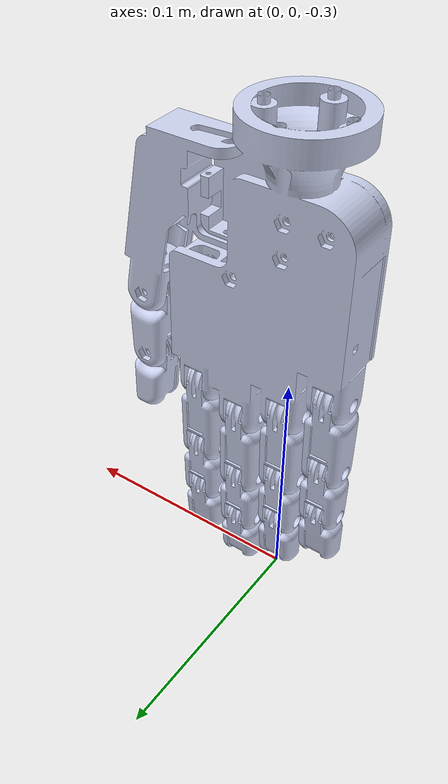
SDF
<?xml version="1.0"?>
<sdf version="1.7">
  <model name="Dextra_right">

    <link name="RightWrist_link">
      <pose>0 0 0 0 -0 0</pose>
      <inertial>
        <mass>0.3</mass>
      </inertial>
      <visual name="RightWrist_visual">
        <geometry>
          <mesh>
            <scale>0.001 0.001 0.001</scale>
            <uri>model://dextra_right/meshes/visual/RightStaticLinks.dae</uri>
          </mesh>
        </geometry>
        <material>
          <ambient>0.792157 0.819608 0.933333 1</ambient>
          <diffuse>0.792157 0.819608 0.933333 1</diffuse>
          <specular>0.633726 0.655686 0.746667 1</specular>
        </material>
      </visual>
      <collision name="RightWrist_collision">
        <geometry>
          <mesh>
            <scale>0.001 0.001 0.001</scale>
            <uri>model://dextra_right/meshes/collision/RightStaticLinks.stl</uri>
          </mesh>
        </geometry>
        <max_contacts>2</max_contacts>
        <surface>
          <contact>
            <ode>
              <kp>1000000</kp>
              <kd>100</kd>
              <max_vel>0.001</max_vel>
              <min_depth>0.001</min_depth>
            </ode>
          </contact>
          <friction>
            <ode>
              <mu>1</mu>
              <mu2>1</mu2>
              <slip1>0</slip1>
              <slip2>0</slip2>
            </ode>
          </friction>
        </surface>
      </collision>
    </link>

    <link name="RightThumbAbductor_link">
      <pose relative_to="RightWrist_link">0.026 -0.0126 -0.112 -1.5708 0 0</pose>
      <inertial>
        <mass>0.1</mass>
      </inertial>
      <visual name="RightThumbAbductor_visual">
        <geometry>
          <mesh>
            <scale>0.001 0.001 0.001</scale>
            <uri>model://dextra_common/meshes/visual/Abductor.dae</uri>
          </mesh>
        </geometry>
        <material>
          <ambient>0.792157 0.819608 0.933333 1</ambient>
          <diffuse>0.792157 0.819608 0.933333 1</diffuse>
          <specular>0.633726 0.655686 0.746667 1</specular>
        </material>
      </visual>
      <collision name="RightThumbAbductor_collision">
        <geometry>
          <mesh>
            <scale>0.001 0.001 0.001</scale>
            <uri>model://dextra_common/meshes/collision/Abductor.stl</uri>
          </mesh>
        </geometry>
        <max_contacts>2</max_contacts>
        <surface>
          <contact>
            <ode>
              <kp>1000000</kp>
              <kd>100</kd>
              <max_vel>0.001</max_vel>
              <min_depth>0.001</min_depth>
            </ode>
          </contact>
          <friction>
            <ode>
              <mu>1</mu>
              <mu2>1</mu2>
              <slip1>0</slip1>
              <slip2>0</slip2>
            </ode>
          </friction>
        </surface>
      </collision>
    </link>

    <joint name="RightThumbAbductor" type="revolute">
      <parent>RightWrist_link</parent>
      <child>RightThumbAbductor_link</child>
      <axis>
        <xyz>0 -1 0</xyz>
        <limit>
          <lower>0.0</lower>
          <upper>1.5708</upper>
        </limit>
        <dynamics>
          <damping>0.001</damping>
          <friction>0.7</friction>
        </dynamics>
      </axis>
    </joint>

    <link name="RightThumbProximal_link">
      <pose relative_to="RightThumbAbductor_link">0.0406 0.0685 0.01775 1.5708 0 1.5708</pose>
      <inertial>
        <mass>0.1</mass>
      </inertial>
      <visual name="RightThumbProximal_visual">
        <geometry>
          <mesh>
            <scale>0.001 0.001 0.001</scale>
            <uri>model://dextra_common/meshes/visual/ProximalThumb.dae</uri>
          </mesh>
        </geometry>
        <material>
          <ambient>0.792157 0.819608 0.933333 1</ambient>
          <diffuse>0.792157 0.819608 0.933333 1</diffuse>
          <specular>0.633726 0.655686 0.746667 1</specular>
        </material>
      </visual>
      <collision name="RightThumbProximal_collision">
        <geometry>
          <mesh>
            <scale>0.001 0.001 0.001</scale>
            <uri>model://dextra_common/meshes/collision/ProximalThumb.stl</uri>
          </mesh>
        </geometry>
        <max_contacts>2</max_contacts>
        <surface>
          <contact>
            <ode>
              <kp>1000000</kp>
              <kd>100</kd>
              <max_vel>0.001</max_vel>
              <min_depth>0.001</min_depth>
            </ode>
          </contact>
          <friction>
            <ode>
              <mu>1</mu>
              <mu2>1</mu2>
              <slip1>0</slip1>
              <slip2>0</slip2>
            </ode>
          </friction>
        </surface>
      </collision>
    </link>

    <joint name="RightThumbProximal" type="revolute">
      <parent>RightThumbAbductor_link</parent>
      <child>RightThumbProximal_link</child>
      <axis>
        <xyz>0 -1 0</xyz>
        <limit>
          <lower>-1.5708</lower>
          <upper>1.5708</upper>
        </limit>
        <dynamics>
          <damping>0.001</damping>
          <friction>0.7</friction>
        </dynamics>
      </axis>
    </joint>

    <link name="RightThumbDistal_link">
      <pose relative_to="RightThumbProximal_link">0.03 0 0 0 0 0</pose>
      <inertial>
        <mass>0.1</mass>
      </inertial>
      <visual name="RightThumbDistal_visual">
        <geometry>
          <mesh>
            <scale>0.001 0.001 0.001</scale>
            <uri>model://dextra_common/meshes/visual/DistalThumb.dae</uri>
          </mesh>
        </geometry>
        <material>
          <ambient>0.792157 0.819608 0.933333 1</ambient>
          <diffuse>0.792157 0.819608 0.933333 1</diffuse>
          <specular>0.633726 0.655686 0.746667 1</specular>
        </material>
      </visual>
      <collision name="RightThumbDistal_collision">
        <geometry>
          <mesh>
            <scale>0.001 0.001 0.001</scale>
            <uri>model://dextra_common/meshes/collision/DistalThumb.stl</uri>
          </mesh>
        </geometry>
        <max_contacts>2</max_contacts>
        <surface>
          <contact>
            <ode>
              <kp>1000000</kp>
              <kd>100</kd>
              <max_vel>0.001</max_vel>
              <min_depth>0.001</min_depth>
            </ode>
          </contact>
          <friction>
            <ode>
              <mu>1</mu>
              <mu2>1</mu2>
              <slip1>0</slip1>
              <slip2>0</slip2>
            </ode>
          </friction>
        </surface>
      </collision>
    </link>

    <joint name="RightThumbDistal" type="revolute">
      <parent>RightThumbProximal_link</parent>
      <child>RightThumbDistal_link</child>
      <axis>
        <xyz>0 -1 0</xyz>
        <limit>
          <lower>-1.48353</lower>
          <upper>-0.122173</upper>
        </limit>
        <dynamics>
          <damping>0.001</damping>
          <friction>0.7</friction>
        </dynamics>
      </axis>
    </joint>

    <link name="RightPinkyProximal_link">
      <pose relative_to="RightWrist_link">-0.01062 -0.001 -0.196 1.5708 1.5708 0</pose>
      <inertial>
        <mass>0.1</mass>
      </inertial>
      <visual name="RightPinkyProximal_visual">
        <geometry>
          <mesh>
            <scale>0.001 0.001 0.001</scale>
            <uri>model://dextra_common/meshes/visual/Proximal.dae</uri>
          </mesh>
        </geometry>
        <material>
          <ambient>0.792157 0.819608 0.933333 1</ambient>
          <diffuse>0.792157 0.819608 0.933333 1</diffuse>
          <specular>0.633726 0.655686 0.746667 1</specular>
        </material>
      </visual>
      <collision name="RightPinkyProximal_collision">
        <geometry>
          <mesh>
            <scale>0.001 0.001 0.001</scale>
            <uri>model://dextra_common/meshes/collision/Proximal.stl</uri>
          </mesh>
        </geometry>
        <max_contacts>2</max_contacts>
        <surface>
          <contact>
            <ode>
              <kp>1000000</kp>
              <kd>100</kd>
              <max_vel>0.001</max_vel>
              <min_depth>0.001</min_depth>
            </ode>
          </contact>
          <friction>
            <ode>
              <mu>1</mu>
              <mu2>1</mu2>
              <slip1>0</slip1>
              <slip2>0</slip2>
            </ode>
          </friction>
        </surface>
      </collision>
    </link>

    <joint name="RightPinkyProximal" type="revolute">
      <parent>RightWrist_link</parent>
      <child>RightPinkyProximal_link</child>
      <axis>
        <xyz>0 -1 0</xyz>
        <limit>
          <lower>-1.48353</lower>
          <upper>-0.122173</upper>
          <velocity>0.174533</velocity>
        </limit>
        <dynamics>
          <damping>0.001</damping>
          <friction>0.7</friction>
        </dynamics>
      </axis>
    </joint>

    <link name="RightPinkyMiddle_link">
      <pose relative_to="RightPinkyProximal_link">0.035 0 0 0 0 0</pose>
      <inertial>
        <mass>0.1</mass>
      </inertial>
      <visual name="RightPinkyMiddle_visual">
        <geometry>
          <mesh>
            <scale>0.001 0.001 0.001</scale>
            <uri>model://dextra_common/meshes/visual/Middle.dae</uri>
          </mesh>
        </geometry>
        <material>
          <ambient>0.792157 0.819608 0.933333 1</ambient>
          <diffuse>0.792157 0.819608 0.933333 1</diffuse>
          <specular>0.633726 0.655686 0.746667 1</specular>
        </material>
      </visual>
      <collision name="RightPinkyMiddle_collision">
        <geometry>
          <mesh>
            <scale>0.001 0.001 0.001</scale>
            <uri>model://dextra_common/meshes/collision/Middle.stl</uri>
          </mesh>
        </geometry>
        <max_contacts>2</max_contacts>
        <surface>
          <contact>
            <ode>
              <kp>1000000</kp>
              <kd>100</kd>
              <max_vel>0.001</max_vel>
              <min_depth>0.001</min_depth>
            </ode>
          </contact>
          <friction>
            <ode>
              <mu>1</mu>
              <mu2>1</mu2>
              <slip1>0</slip1>
              <slip2>0</slip2>
            </ode>
          </friction>
        </surface>
      </collision>
    </link>

    <joint name="RightPinkyMiddle" type="revolute">
      <parent>RightPinkyProximal_link</parent>
      <child>RightPinkyMiddle_link</child>
      <axis>
        <xyz>0 -1 0</xyz>
        <limit>
          <lower>-1.48353</lower>
          <upper>-0.122173</upper>
          <velocity>0.174533</velocity>
        </limit>
        <dynamics>
          <damping>0.001</damping>
          <friction>0.7</friction>
        </dynamics>
      </axis>
    </joint>

    <link name="RightPinkyDistal_link">
      <pose relative_to="RightPinkyMiddle_link">0.025 0 0 0 0 0</pose>
      <inertial>
        <mass>0.1</mass>
      </inertial>
      <visual name="RightPinkyDistal_visual">
        <geometry>
          <mesh>
            <scale>0.001 0.001 0.001</scale>
            <uri>model://dextra_common/meshes/visual/Distal.dae</uri>
          </mesh>
        </geometry>
        <material>
          <ambient>0.792157 0.819608 0.933333 1</ambient>
          <diffuse>0.792157 0.819608 0.933333 1</diffuse>
          <specular>0.633726 0.655686 0.746667 1</specular>
        </material>
      </visual>
      <collision name="RightPinkyDistal_collision">
        <geometry>
          <mesh>
            <scale>0.001 0.001 0.001</scale>
            <uri>model://dextra_common/meshes/collision/Distal.stl</uri>
          </mesh>
        </geometry>
        <max_contacts>2</max_contacts>
        <surface>
          <contact>
            <ode>
              <kp>1000000</kp>
              <kd>100</kd>
              <max_vel>0.001</max_vel>
              <min_depth>0.001</min_depth>
            </ode>
          </contact>
          <friction>
            <ode>
              <mu>1</mu>
              <mu2>1</mu2>
              <slip1>0</slip1>
              <slip2>0</slip2>
            </ode>
          </friction>
        </surface>
      </collision>
    </link>

    <joint name="RightPinkyDistal" type="revolute">
      <parent>RightPinkyMiddle_link</parent>
      <child>RightPinkyDistal_link</child>
      <axis>
        <xyz>0 -1 0</xyz>
        <limit>
          <lower>-1.48353</lower>
          <upper>-0.122173</upper>
          <velocity>0.174533</velocity>
        </limit>
        <dynamics>
          <damping>0.001</damping>
          <friction>0.7</friction>
        </dynamics>
      </axis>
    </joint>

    <link name="RightRingProximal_link">
      <pose relative_to="RightWrist_link">0.0089 -0.001 -0.211 1.5708 1.5708 0</pose>
      <inertial>
        <mass>0.1</mass>
      </inertial>
      <visual name="RightRingProximal_visual">
        <geometry>
          <mesh>
            <scale>0.001 0.001 0.001</scale>
            <uri>model://dextra_common/meshes/visual/Proximal.dae</uri>
          </mesh>
        </geometry>
        <material>
          <ambient>0.792157 0.819608 0.933333 1</ambient>
          <diffuse>0.792157 0.819608 0.933333 1</diffuse>
          <specular>0.633726 0.655686 0.746667 1</specular>
        </material>
      </visual>
      <collision name="RightRingProximal_collision">
        <geometry>
          <mesh>
            <scale>0.001 0.001 0.001</scale>
            <uri>model://dextra_common/meshes/collision/Proximal.stl</uri>
          </mesh>
        </geometry>
        <max_contacts>2</max_contacts>
        <surface>
          <contact>
            <ode>
              <kp>1000000</kp>
              <kd>100</kd>
              <max_vel>0.001</max_vel>
              <min_depth>0.001</min_depth>
            </ode>
          </contact>
          <friction>
            <ode>
              <mu>1</mu>
              <mu2>1</mu2>
              <slip1>0</slip1>
              <slip2>0</slip2>
            </ode>
          </friction>
        </surface>
      </collision>
    </link>

    <joint name="RightRingProximal" type="revolute">
      <parent>RightWrist_link</parent>
      <child>RightRingProximal_link</child>
      <axis>
        <xyz>0 -1 0</xyz>
        <limit>
          <lower>-1.48353</lower>
          <upper>-0.122173</upper>
          <velocity>0.174533</velocity>
        </limit>
        <dynamics>
          <damping>0.001</damping>
          <friction>0.7</friction>
        </dynamics>
      </axis>
    </joint>

    <link name="RightRingMiddle_link">
      <pose relative_to="RightRingProximal_link">0.035 0 0 0 0 0</pose>
      <inertial>
        <mass>0.1</mass>
      </inertial>
      <visual name="RightRingMiddle_visual">
        <geometry>
          <mesh>
            <scale>0.001 0.001 0.001</scale>
            <uri>model://dextra_common/meshes/visual/Middle.dae</uri>
          </mesh>
        </geometry>
        <material>
          <ambient>0.792157 0.819608 0.933333 1</ambient>
          <diffuse>0.792157 0.819608 0.933333 1</diffuse>
          <specular>0.633726 0.655686 0.746667 1</specular>
        </material>
      </visual>
      <collision name="RightRingMiddle_collision">
        <geometry>
          <mesh>
            <scale>0.001 0.001 0.001</scale>
            <uri>model://dextra_common/meshes/collision/Middle.stl</uri>
          </mesh>
        </geometry>
        <max_contacts>2</max_contacts>
        <surface>
          <contact>
            <ode>
              <kp>1000000</kp>
              <kd>100</kd>
              <max_vel>0.001</max_vel>
              <min_depth>0.001</min_depth>
            </ode>
          </contact>
          <friction>
            <ode>
              <mu>1</mu>
              <mu2>1</mu2>
              <slip1>0</slip1>
              <slip2>0</slip2>
            </ode>
          </friction>
        </surface>
      </collision>
    </link>

    <joint name="RightRingMiddle" type="revolute">
      <parent>RightRingProximal_link</parent>
      <child>RightRingMiddle_link</child>
      <axis>
        <xyz>0 -1 0</xyz>
        <limit>
          <lower>-1.48353</lower>
          <upper>-0.122173</upper>
          <velocity>0.174533</velocity>
        </limit>
        <dynamics>
          <damping>0.001</damping>
          <friction>0.7</friction>
        </dynamics>
      </axis>
    </joint>

    <link name="RightRingDistal_link">
      <pose relative_to="RightRingMiddle_link">0.025 0 0 0 0 0</pose>
      <inertial>
        <mass>0.1</mass>
      </inertial>
      <visual name="RightRingDistal_visual">
        <geometry>
          <mesh>
            <scale>0.001 0.001 0.001</scale>
            <uri>model://dextra_common/meshes/visual/Distal.dae</uri>
          </mesh>
        </geometry>
        <material>
          <ambient>0.792157 0.819608 0.933333 1</ambient>
          <diffuse>0.792157 0.819608 0.933333 1</diffuse>
          <specular>0.633726 0.655686 0.746667 1</specular>
        </material>
      </visual>
      <collision name="RightRingDistal_collision">
        <geometry>
          <mesh>
            <scale>0.001 0.001 0.001</scale>
            <uri>model://dextra_common/meshes/collision/Distal.stl</uri>
          </mesh>
        </geometry>
        <max_contacts>2</max_contacts>
        <surface>
          <contact>
            <ode>
              <kp>1000000</kp>
              <kd>100</kd>
              <max_vel>0.001</max_vel>
              <min_depth>0.001</min_depth>
            </ode>
          </contact>
          <friction>
            <ode>
              <mu>1</mu>
              <mu2>1</mu2>
              <slip1>0</slip1>
              <slip2>0</slip2>
            </ode>
          </friction>
        </surface>
      </collision>
    </link>

    <joint name="RightRingDistal" type="revolute">
      <parent>RightRingMiddle_link</parent>
      <child>RightRingDistal_link</child>
      <axis>
        <xyz>0 -1 0</xyz>
        <limit>
          <lower>-1.48353</lower>
          <upper>-0.122173</upper>
          <velocity>0.174533</velocity>
        </limit>
        <dynamics>
          <damping>0.001</damping>
          <friction>0.7</friction>
        </dynamics>
      </axis>
    </joint>

    <link name="RightMiddleProximal_link">
      <pose relative_to="RightWrist_link">0.02842 -0.001 -0.221 1.5708 1.5708 0</pose>
      <inertial>
        <mass>0.1</mass>
      </inertial>
      <visual name="RightMiddleProximal_visual">
        <geometry>
          <mesh>
            <scale>0.001 0.001 0.001</scale>
            <uri>model://dextra_common/meshes/visual/Proximal.dae</uri>
          </mesh>
        </geometry>
        <material>
          <ambient>0.792157 0.819608 0.933333 1</ambient>
          <diffuse>0.792157 0.819608 0.933333 1</diffuse>
          <specular>0.633726 0.655686 0.746667 1</specular>
        </material>
      </visual>
      <collision name="RightMiddleProximal_collision">
        <geometry>
          <mesh>
            <scale>0.001 0.001 0.001</scale>
            <uri>model://dextra_common/meshes/collision/Proximal.stl</uri>
          </mesh>
        </geometry>
        <max_contacts>2</max_contacts>
        <surface>
          <contact>
            <ode>
              <kp>1000000</kp>
              <kd>100</kd>
              <max_vel>0.001</max_vel>
              <min_depth>0.001</min_depth>
            </ode>
          </contact>
          <friction>
            <ode>
              <mu>1</mu>
              <mu2>1</mu2>
              <slip1>0</slip1>
              <slip2>0</slip2>
            </ode>
          </friction>
        </surface>
      </collision>
    </link>

    <joint name="RightMiddleProximal" type="revolute">
      <parent>RightWrist_link</parent>
      <child>RightMiddleProximal_link</child>
      <axis>
        <xyz>0 -1 0</xyz>
        <limit>
          <lower>-1.48353</lower>
          <upper>-0.122173</upper>
          <velocity>0.174533</velocity>
        </limit>
        <dynamics>
          <damping>0.001</damping>
          <friction>0.7</friction>
        </dynamics>
      </axis>
    </joint>

    <link name="RightMiddleMiddle_link">
      <pose relative_to="RightMiddleProximal_link">0.035 0 0 0 0 0</pose>
      <inertial>
        <mass>0.1</mass>
      </inertial>
      <visual name="RightMiddleMiddle_visual">
        <geometry>
          <mesh>
            <scale>0.001 0.001 0.001</scale>
            <uri>model://dextra_common/meshes/visual/Middle.dae</uri>
          </mesh>
        </geometry>
        <material>
          <ambient>0.792157 0.819608 0.933333 1</ambient>
          <diffuse>0.792157 0.819608 0.933333 1</diffuse>
          <specular>0.633726 0.655686 0.746667 1</specular>
        </material>
      </visual>
      <collision name="RightMiddleMiddle_collision">
        <geometry>
          <mesh>
            <scale>0.001 0.001 0.001</scale>
            <uri>model://dextra_common/meshes/collision/Middle.stl</uri>
          </mesh>
        </geometry>
        <max_contacts>2</max_contacts>
        <surface>
          <contact>
            <ode>
              <kp>1000000</kp>
              <kd>100</kd>
              <max_vel>0.001</max_vel>
              <min_depth>0.001</min_depth>
            </ode>
          </contact>
          <friction>
            <ode>
              <mu>1</mu>
              <mu2>1</mu2>
              <slip1>0</slip1>
              <slip2>0</slip2>
            </ode>
          </friction>
        </surface>
      </collision>
    </link>

    <joint name="RightMiddleMiddle" type="revolute">
      <parent>RightMiddleProximal_link</parent>
      <child>RightMiddleMiddle_link</child>
      <axis>
        <xyz>0 -1 0</xyz>
        <limit>
          <lower>-1.48353</lower>
          <upper>-0.122173</upper>
          <velocity>0.174533</velocity>
        </limit>
        <dynamics>
          <damping>0.001</damping>
          <friction>0.7</friction>
        </dynamics>
      </axis>
    </joint>

    <link name="RightMiddleDistal_link">
      <pose relative_to="RightMiddleMiddle_link">0.025 0 0 0 0 0</pose>
      <inertial>
        <mass>0.1</mass>
      </inertial>
      <visual name="RightMiddleDistal_visual">
        <geometry>
          <mesh>
            <scale>0.001 0.001 0.001</scale>
            <uri>model://dextra_common/meshes/visual/Distal.dae</uri>
          </mesh>
        </geometry>
        <material>
          <ambient>0.792157 0.819608 0.933333 1</ambient>
          <diffuse>0.792157 0.819608 0.933333 1</diffuse>
          <specular>0.633726 0.655686 0.746667 1</specular>
        </material>
      </visual>
      <collision name="RightMiddleDistal_collision">
        <geometry>
          <mesh>
            <scale>0.001 0.001 0.001</scale>
            <uri>model://dextra_common/meshes/collision/Distal.stl</uri>
          </mesh>
        </geometry>
        <max_contacts>2</max_contacts>
        <surface>
          <contact>
            <ode>
              <kp>1000000</kp>
              <kd>100</kd>
              <max_vel>0.001</max_vel>
              <min_depth>0.001</min_depth>
            </ode>
          </contact>
          <friction>
            <ode>
              <mu>1</mu>
              <mu2>1</mu2>
              <slip1>0</slip1>
              <slip2>0</slip2>
            </ode>
          </friction>
        </surface>
      </collision>
    </link>

    <joint name="RightMiddleDistal" type="revolute">
      <parent>RightMiddleMiddle_link</parent>
      <child>RightMiddleDistal_link</child>
      <axis>
        <xyz>0 -1 0</xyz>
        <limit>
          <lower>-1.48353</lower>
          <upper>-0.122173</upper>
          <velocity>0.174533</velocity>
        </limit>
        <dynamics>
          <damping>0.001</damping>
          <friction>0.7</friction>
        </dynamics>
      </axis>
    </joint>

    <link name="RightIndexProximal_link">
      <pose relative_to="RightWrist_link">0.04794 -0.001 -0.213 1.5708 1.5708 0</pose>
      <inertial>
        <mass>0.1</mass>
      </inertial>
      <visual name="RightIndexProximal_visual">
        <geometry>
          <mesh>
            <scale>0.001 0.001 0.001</scale>
            <uri>model://dextra_common/meshes/visual/Proximal.dae</uri>
          </mesh>
        </geometry>
        <material>
          <ambient>0.792157 0.819608 0.933333 1</ambient>
          <diffuse>0.792157 0.819608 0.933333 1</diffuse>
          <specular>0.633726 0.655686 0.746667 1</specular>
        </material>
      </visual>
      <collision name="RightIndexProximal_collision">
        <geometry>
          <mesh>
            <scale>0.001 0.001 0.001</scale>
            <uri>model://dextra_common/meshes/collision/Proximal.stl</uri>
          </mesh>
        </geometry>
        <max_contacts>2</max_contacts>
        <surface>
          <contact>
            <ode>
              <kp>1000000</kp>
              <kd>100</kd>
              <max_vel>0.001</max_vel>
              <min_depth>0.001</min_depth>
            </ode>
          </contact>
          <friction>
            <ode>
              <mu>1</mu>
              <mu2>1</mu2>
              <slip1>0</slip1>
              <slip2>0</slip2>
            </ode>
          </friction>
        </surface>
      </collision>
    </link>

    <joint name="RightIndexProximal" type="revolute">
      <parent>RightWrist_link</parent>
      <child>RightIndexProximal_link</child>
      <axis>
        <xyz>0 -1 0</xyz>
        <limit>
          <lower>-1.48353</lower>
          <upper>-0.122173</upper>
          <velocity>0.174533</velocity>
        </limit>
        <dynamics>
          <damping>0.001</damping>
          <friction>0.7</friction>
        </dynamics>
      </axis>
    </joint>

    <link name="RightIndexMiddle_link">
      <pose relative_to="RightIndexProximal_link">0.035 0 0 0 0 0</pose>
      <inertial>
        <mass>0.1</mass>
      </inertial>
      <visual name="RightIndexMiddle_visual">
        <geometry>
          <mesh>
            <scale>0.001 0.001 0.001</scale>
            <uri>model://dextra_common/meshes/visual/Middle.dae</uri>
          </mesh>
        </geometry>
        <material>
          <ambient>0.792157 0.819608 0.933333 1</ambient>
          <diffuse>0.792157 0.819608 0.933333 1</diffuse>
          <specular>0.633726 0.655686 0.746667 1</specular>
        </material>
      </visual>
      <collision name="RightIndexMiddle_collision">
        <geometry>
          <mesh>
            <scale>0.001 0.001 0.001</scale>
            <uri>model://dextra_common/meshes/collision/Middle.stl</uri>
          </mesh>
        </geometry>
        <max_contacts>2</max_contacts>
        <surface>
          <contact>
            <ode>
              <kp>1000000</kp>
              <kd>100</kd>
              <max_vel>0.001</max_vel>
              <min_depth>0.001</min_depth>
            </ode>
          </contact>
          <friction>
            <ode>
              <mu>1</mu>
              <mu2>1</mu2>
              <slip1>0</slip1>
              <slip2>0</slip2>
            </ode>
          </friction>
        </surface>
      </collision>
    </link>

    <joint name="RightIndexMiddle" type="revolute">
      <parent>RightIndexProximal_link</parent>
      <child>RightIndexMiddle_link</child>
      <axis>
        <xyz>0 -1 0</xyz>
        <limit>
          <lower>-1.48353</lower>
          <upper>-0.122173</upper>
          <velocity>0.174533</velocity>
        </limit>
        <dynamics>
          <damping>0.001</damping>
          <friction>0.7</friction>
        </dynamics>
      </axis>
    </joint>

    <link name="RightIndexDistal_link">
      <pose relative_to="RightIndexMiddle_link">0.025 0 0 0 0 0</pose>
      <inertial>
        <mass>0.1</mass>
      </inertial>
      <visual name="RightIndexDistal_visual">
        <geometry>
          <mesh>
            <scale>0.001 0.001 0.001</scale>
            <uri>model://dextra_common/meshes/visual/Distal.dae</uri>
          </mesh>
        </geometry>
        <material>
          <ambient>0.792157 0.819608 0.933333 1</ambient>
          <diffuse>0.792157 0.819608 0.933333 1</diffuse>
          <specular>0.633726 0.655686 0.746667 1</specular>
        </material>
      </visual>
      <collision name="RightIndexDistal_collision">
        <geometry>
          <mesh>
            <scale>0.001 0.001 0.001</scale>
            <uri>model://dextra_common/meshes/collision/Distal.stl</uri>
          </mesh>
        </geometry>
        <max_contacts>2</max_contacts>
        <surface>
          <contact>
            <ode>
              <kp>1000000</kp>
              <kd>100</kd>
              <max_vel>0.001</max_vel>
              <min_depth>0.001</min_depth>
            </ode>
          </contact>
          <friction>
            <ode>
              <mu>1</mu>
              <mu2>1</mu2>
              <slip1>0</slip1>
              <slip2>0</slip2>
            </ode>
          </friction>
        </surface>
      </collision>
    </link>

    <joint name="RightIndexDistal" type="revolute">
      <parent>RightIndexMiddle_link</parent>
      <child>RightIndexDistal_link</child>
      <axis>
        <xyz>0 -1 0</xyz>
        <limit>
          <lower>-1.48353</lower>
          <upper>-0.122173</upper>
          <velocity>0.174533</velocity>
        </limit>
        <dynamics>
          <damping>0.001</damping>
          <friction>0.7</friction>
        </dynamics>
      </axis>
    </joint>

    <plugin name="gzyarp::ControlBoard" filename="gz-sim-yarp-controlboard-system">
      <yarpConfigurationFile>model://dextra_right/conf/gazebo_dextra_right.ini</yarpConfigurationFile>
    </plugin>

    <plugin name="gzyarp::RobotInterface" filename="gz-sim-yarp-robotinterface-system">
      <yarpRobotInterfaceConfigurationFile>model://dextra_right/conf/dextra_right_nws_yarp.xml</yarpRobotInterfaceConfigurationFile>
    </plugin>

    <plugin name="gzyarp::RobotInterface" filename="gz-sim-yarp-robotinterface-system">
      <yarpRobotInterfaceConfigurationFile>model://dextra_right/conf/dextra_right_nws_ros2.xml</yarpRobotInterfaceConfigurationFile>
    </plugin>

  </model>
</sdf>
